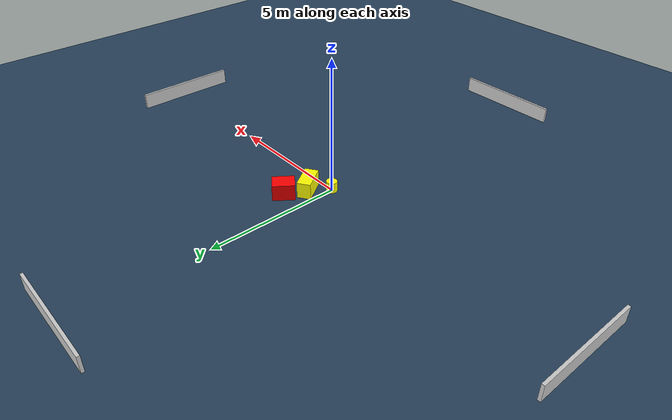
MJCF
<?xml version="1.0" ?>
<mujoco model="generated_environment">
  <option timestep="0.01" integrator="RK4" cone="elliptic"/>
  <default>
    <geom density="1"/>
  </default>
  <asset>
    <texture builtin="gradient" height="3072" name="skybox" rgb1="0.3 0.5 0.7" rgb2="0 0 0" type="skybox" width="512"/>
    <texture builtin="checker" height="300" name="groundplane" rgb1="0.2 0.3 0.4" rgb2="0.1 0.2 0.3" type="2d" width="300"/>
    <material name="groundplane" reflectance="0.2" texrepeat="5 5" texture="groundplane"/>
  </asset>
  <worldbody>
    <light dir="0 0 -1" directional="true" pos="0 0 1.5"/>
    <geom condim="3" friction="0.5 0.005 0.001" material="groundplane" name="floor" pos="0 0 0" size="0 0 0.05" type="plane"/>
    <body name="walls">
      <geom name="wall_1" condim="4" pos="-10.0 0.0 0.3" rgba="0.800000011920929 0.800000011920929 0.800000011920929 1.0" size="0.05 2.0 0.3" type="box"/>
      <geom name="wall_2" condim="4" pos="10.0 0.0 0.3" rgba="0.800000011920929 0.800000011920929 0.800000011920929 1.0" size="0.05 2.0 0.3" type="box"/>
      <geom name="wall_3" condim="4" pos="0.0 -10.0 0.3" rgba="0.800000011920929 0.800000011920929 0.800000011920929 1.0" size="2.0 0.05 0.3" type="box"/>
      <geom name="wall_4" condim="4" pos="0.0 10.0 0.3" rgba="0.800000011920929 0.800000011920929 0.800000011920929 1.0" size="2.0 0.05 0.3" type="box"/>
    </body>
    <body name="robot">
      <joint name="joint_x" type="slide" pos="0 0 0" axis="1 0 0"/>
      <joint name="joint_y" type="slide" pos="0 0 0" axis="0 1 0"/>
      <geom name="robot" type="cylinder" pos="0.0 0.0 0.2" size="0.2 0.2 0.0" mass="5.0" friction="1.0 0.005 0.0001" condim="4" rgba="1.0 1.0 0.0 1.0"/>
    </body>
    <body name="obstacle_1_movable">
      <geom name="obstacle_1_movable" condim="4" pos="0.5339278120538659 0.6512645973030392 0.3" euler="0 0 213.57014665853418" friction="0.0 0.005 0.001" rgba="1.0 1.0 0.0 1.0" size="0.248032042855626 0.4878008955762296 0.3" type="box" mass="0.1"/>
      <joint type="free"/>
    </body>
    <body name="obstacle_2_static">
      <geom name="obstacle_2_static" condim="4" pos="0.868872306200639 1.4681435155778517 0.3" euler="0 0 143.37872880271502" friction="0.0 0.005 0.001" rgba="1.0 0.0 0.0 1.0" size="0.30929637888090533 0.40343359982806215 0.3" type="box"/>
    </body>
  </worldbody>
  <actuator>
    <motor name="actuator_x" joint="joint_x" gear="1" ctrlrange="-1 1"/>
    <motor name="actuator_y" joint="joint_y" gear="1" ctrlrange="-1 1"/>
  </actuator>
</mujoco>
